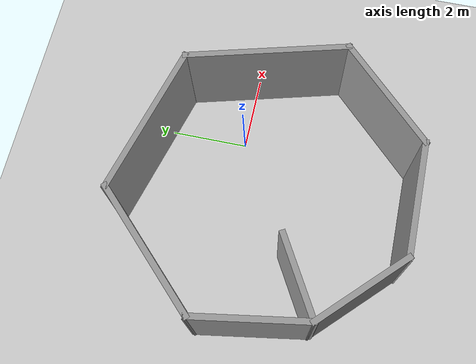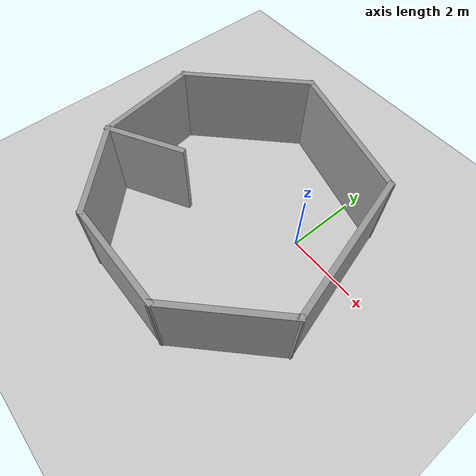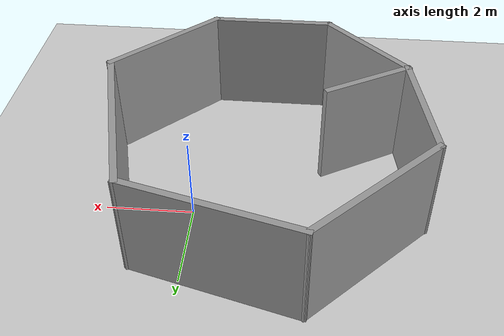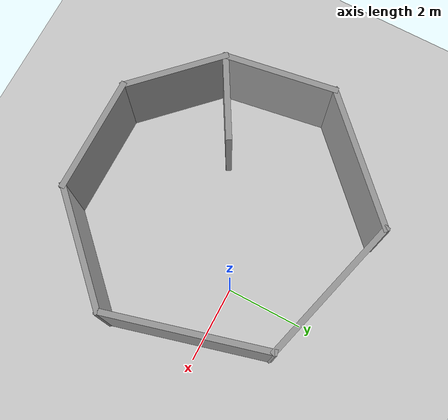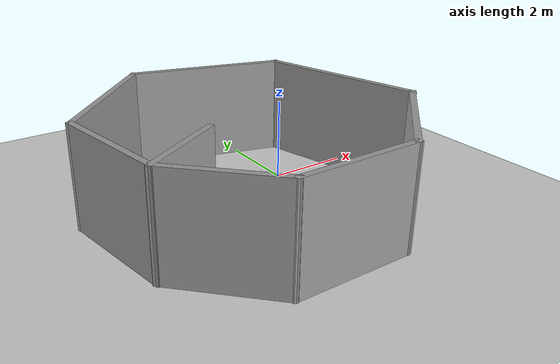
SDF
<sdf version="1.7">
 <world name="default">
  <light name="sun" type="directional">
   <pose>0 0 10 0 -0 0</pose>
   <diffuse>0.8 0.8 0.8 1</diffuse>
   <specular>0.2 0.2 0.2 1</specular>
   <attenuation>
    <range>1000</range>
    <constant>0.9</constant>
    <linear>0.01</linear>
    <quadratic>0.001</quadratic>
   </attenuation>
   <direction>-0.5 0.1 -0.9</direction>
   <spot><inner_angle>0</inner_angle><outer_angle>0</outer_angle><falloff>0</falloff></spot>
  </light>
  <model name="ground_plane">
   <static>1</static>
   <link name="link">
    <collision name="collision">
     <geometry><plane><normal>0 0 1</normal><size>100 100</size></plane></geometry>
     <surface><friction><ode><mu>100</mu><mu2>50</mu2></ode></friction></surface>
    </collision>
    <visual name="visual">
     <cast_shadows>0</cast_shadows>
     <geometry><plane><normal>0 0 1</normal><size>100 100</size></plane></geometry>
     <material>
      <script><uri>file://media/materials/scripts/gazebo.material</uri><name>Gazebo/Grey</name></script>
     </material>
    </visual>
   </link>
  </model>
  <gravity>0 0 -9.8</gravity>
  <magnetic_field>6e-06 2.3e-05 -4.2e-05</magnetic_field>
  <atmosphere type="adiabatic"/>
  <physics type="ode">
   <max_step_size>0.001</max_step_size>
   <real_time_factor>1</real_time_factor>
   <real_time_update_rate>1000</real_time_update_rate>
  </physics>
  <scene><ambient>0.4 0.4 0.4 1</ambient><background>0.7 0.7 0.7 1</background><shadows>1</shadows></scene>
  <audio><device>default</device></audio>
  <spherical_coordinates>
   <surface_model>EARTH_WGS84</surface_model>
   <latitude_deg>0</latitude_deg>
   <longitude_deg>0</longitude_deg>
   <elevation>0</elevation>
   <heading_deg>0</heading_deg>
  </spherical_coordinates>
  <model name="tuba">
   <pose>-1.51227 -0.884087 0 0 -0 0</pose>
   <link name="Wall_0">
    <collision name="Wall_0_Collision">
     <geometry><box><size>2.75 0.15 2.5</size></box></geometry>
     <pose>0 0 1.25 0 -0 0</pose>
    </collision>
    <visual name="Wall_0_Visual">
     <pose>0 0 1.25 0 -0 0</pose>
     <geometry><box><size>2.75 0.15 2.5</size></box></geometry>
     <material>
      <script><uri>file://media/materials/scripts/gazebo.material</uri><name>Gazebo/Grey</name></script>
      <ambient>1 1 1 1</ambient>
     </material>
     <meta><layer>0</layer></meta>
    </visual>
    <pose>-2.29849 -2.65515 0 0 -0 -0.785398</pose>
   </link>
   <link name="Wall_1">
    <collision name="Wall_1_Collision">
     <geometry><box><size>3 0.15 2.5</size></box></geometry>
     <pose>0 0 1.25 0 -0 0</pose>
    </collision>
    <visual name="Wall_1_Visual">
     <pose>0 0 1.25 0 -0 0</pose>
     <geometry><box><size>3 0.15 2.5</size></box></geometry>
     <material>
      <script><uri>file://media/materials/scripts/gazebo.material</uri><name>Gazebo/Grey</name></script>
      <ambient>1 1 1 1</ambient>
     </material>
     <meta><layer>0</layer></meta>
    </visual>
    <pose>0.045748 -3.57439 0 0 -0 0</pose>
   </link>
   <link name="Wall_2">
    <collision name="Wall_2_Collision">
     <geometry><box><size>3.25 0.15 2.5</size></box></geometry>
     <pose>0 0 1.25 0 -0 0</pose>
    </collision>
    <visual name="Wall_2_Visual">
     <pose>0 0 1.25 0 -0 0</pose>
     <geometry><box><size>3.25 0.15 2.5</size></box></geometry>
     <material>
      <script><uri>file://media/materials/scripts/gazebo.material</uri><name>Gazebo/Grey</name></script>
      <ambient>1 1 1 1</ambient>
     </material>
     <meta><layer>0</layer></meta>
    </visual>
    <pose>2.56676 -2.47838 0 0 -0 0.785398</pose>
   </link>
   <link name="Wall_3">
    <collision name="Wall_3_Collision">
     <geometry><box><size>4.25 0.15 2.5</size></box></geometry>
     <pose>0 0 1.25 0 -0 0</pose>
    </collision>
    <visual name="Wall_3_Visual">
     <pose>0 0 1.25 0 -0 0</pose>
     <geometry><box><size>4.25 0.15 2.5</size></box></geometry>
     <material>
      <script><uri>file://media/materials/scripts/gazebo.material</uri><name>Gazebo/Grey</name></script>
      <ambient>1 1 1 1</ambient>
     </material>
     <meta><layer>0</layer></meta>
    </visual>
    <pose>3.1322 0.597789 0 0 -0 1.8326</pose>
   </link>
   <link name="Wall_4">
    <collision name="Wall_4_Collision">
     <geometry><box><size>4 0.15 2.5</size></box></geometry>
     <pose>0 0 1.25 0 -0 0</pose>
    </collision>
    <visual name="Wall_4_Visual">
     <pose>0 0 1.25 0 -0 0</pose>
     <geometry><box><size>4 0.15 2.5</size></box></geometry>
     <material>
      <script><uri>file://media/materials/scripts/gazebo.material</uri><name>Gazebo/Grey</name></script>
      <ambient>1 1 1 1</ambient>
     </material>
     <meta><layer>0</layer></meta>
    </visual>
    <pose>0.742213 3.07616 0 0 -0 2.87979</pose>
   </link>
   <link name="Wall_5">
    <collision name="Wall_5_Collision">
     <geometry><box><size>3.75 0.15 2.5</size></box></geometry>
     <pose>0 0 1.25 0 -0 0</pose>
    </collision>
    <visual name="Wall_5_Visual">
     <pose>0 0 1.25 0 -0 0</pose>
     <geometry><box><size>3.75 0.15 2.5</size></box></geometry>
     <material>
      <script><uri>file://media/materials/scripts/gazebo.material</uri><name>Gazebo/Grey</name></script>
      <ambient>1 1 1 1</ambient>
     </material>
     <meta><layer>0</layer></meta>
    </visual>
    <pose>-2.38999 2.3016 0 0 -0 -2.35619</pose>
   </link>
   <link name="Wall_6">
    <collision name="Wall_6_Collision">
     <geometry><box><size>2.95031 0.15 2.5</size></box></geometry>
     <pose>0 0 1.25 0 -0 0</pose>
    </collision>
    <visual name="Wall_6_Visual">
     <pose>0 0 1.25 0 -0 0</pose>
     <geometry><box><size>2.95031 0.15 2.5</size></box></geometry>
     <material>
      <script><uri>file://media/materials/scripts/gazebo.material</uri><name>Gazebo/Grey</name></script>
      <ambient>1 1 1 1</ambient>
     </material>
     <meta><layer>0</layer></meta>
    </visual>
    <pose>-3.44025 -0.353554 0 0 -0 -1.41119</pose>
   </link>
   <link name="Wall_7">
    <collision name="Wall_7_Collision">
     <geometry><box><size>2.25 0.15 2.5</size></box></geometry>
     <pose>0 0 1.25 0 -0 0</pose>
    </collision>
    <visual name="Wall_7_Visual">
     <pose>0 0 1.25 0 -0 0</pose>
     <geometry><box><size>2.25 0.15 2.5</size></box></geometry>
     <material>
      <script><uri>file://media/materials/scripts/gazebo.material</uri><name>Gazebo/Grey</name></script>
      <ambient>1 1 1 1</ambient>
     </material>
     <meta><layer>0</layer></meta>
    </visual>
    <pose>-2.3084 -1.21091 0 0 -0 0.523599</pose>
   </link>
   <static>1</static>
  </model>
 </world>
</sdf>
